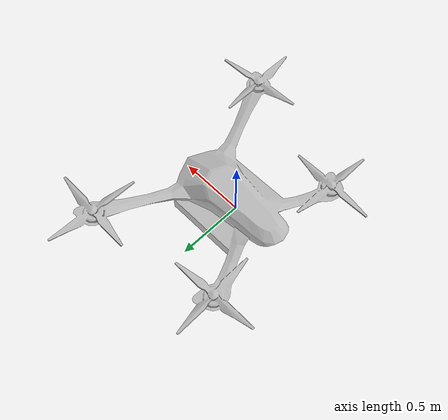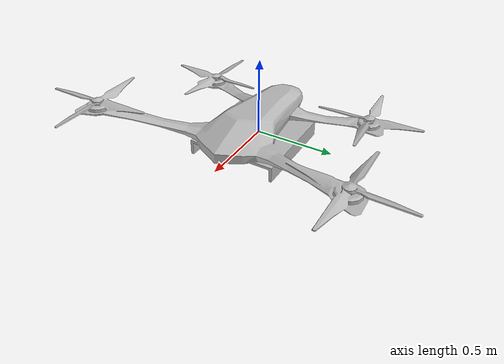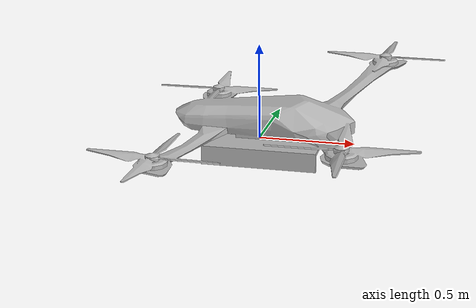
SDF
<?xml version="1.0" ?>
<sdf version="1.6">
  <model name="drone">
    <static>true</static>
    <link name="link">
      <pose>0 0 0 0 0 -1.5707</pose>
      <collision name="collision">
        <geometry>
          <mesh>
            <scale>1.3 1.3 1.0</scale>
            <uri>model://drone_ariac/meshes/Drone.dae</uri>
          </mesh>
        </geometry>
      </collision>
      <visual name="visual">
        <geometry>
          <mesh>
            <scale>1.3 1.3 1.0</scale>
            <uri>model://drone_ariac/meshes/Drone.dae</uri>
          </mesh>
        </geometry>
      </visual>
    </link>
  </model>
</sdf>
